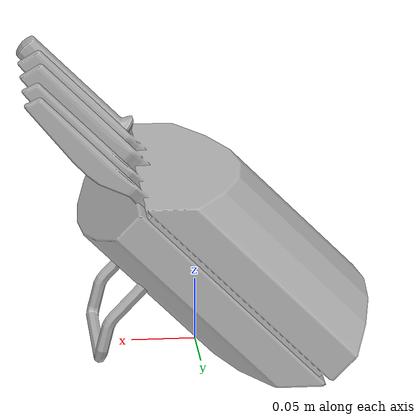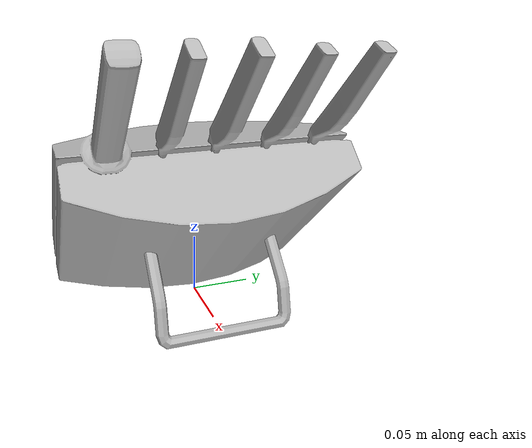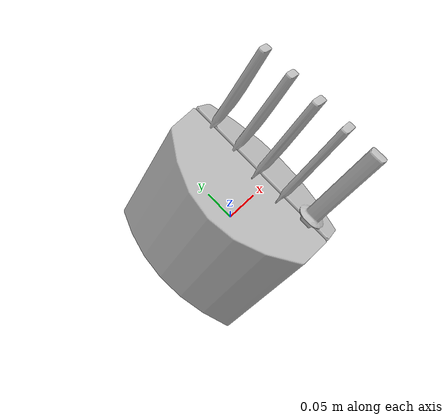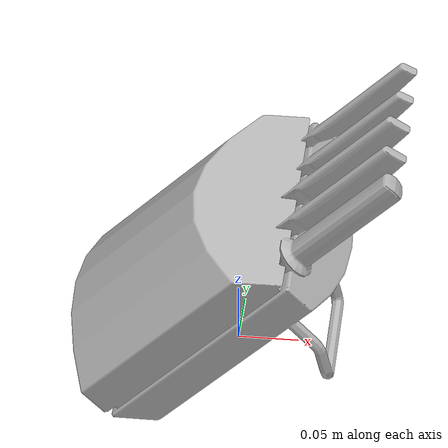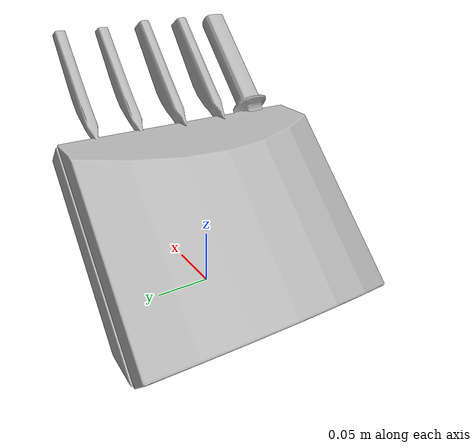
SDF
<?xml version='1.0'?>
<sdf version='1.4'>
  <model name='538'>
    <pose>0 0 0 0 0 0</pose>
    <static>true</static>
    <link name='link'>
      <collision name='collision'>
        <pose>0 0 0 0 0 0</pose>
        <geometry>
          <box>
            <size>0.26966 0.229753 2</size>
          </box>
        </geometry>
      </collision>
      <visual name='visual'>
        <pose>0 0 0 0 0 0</pose>
        <geometry>
          <mesh><uri>model://538/538.dae</uri></mesh>
        </geometry>
      </visual>
    </link>
  </model>
</sdf>
